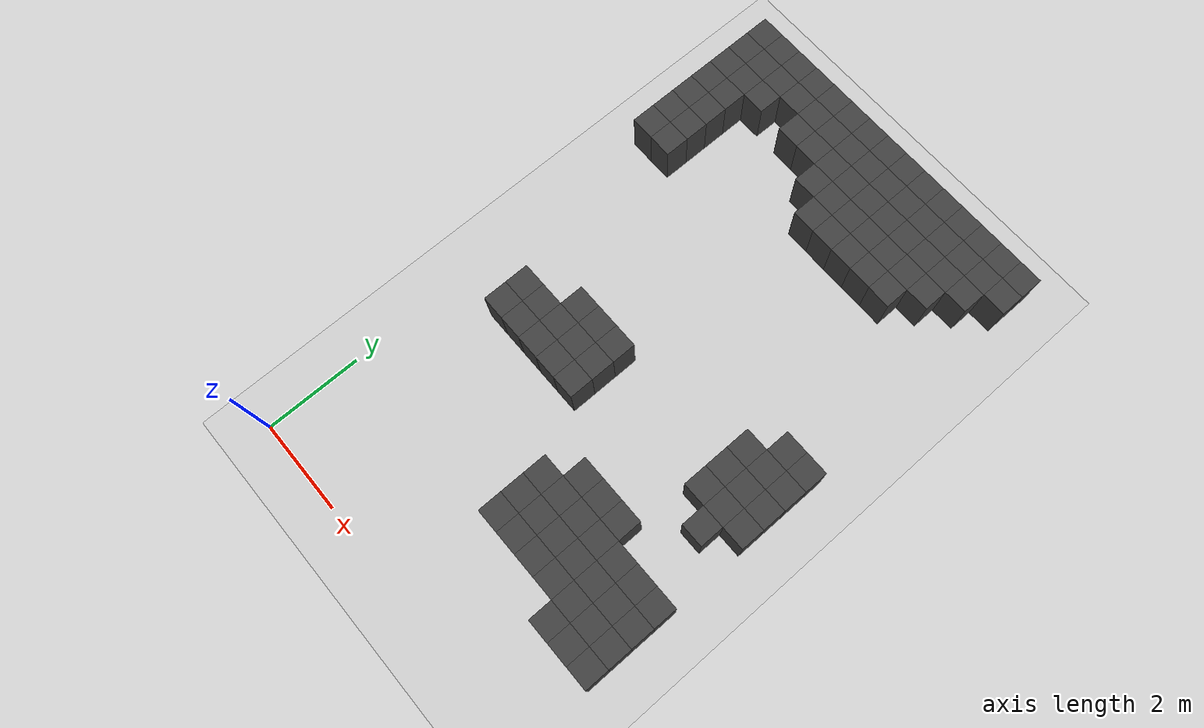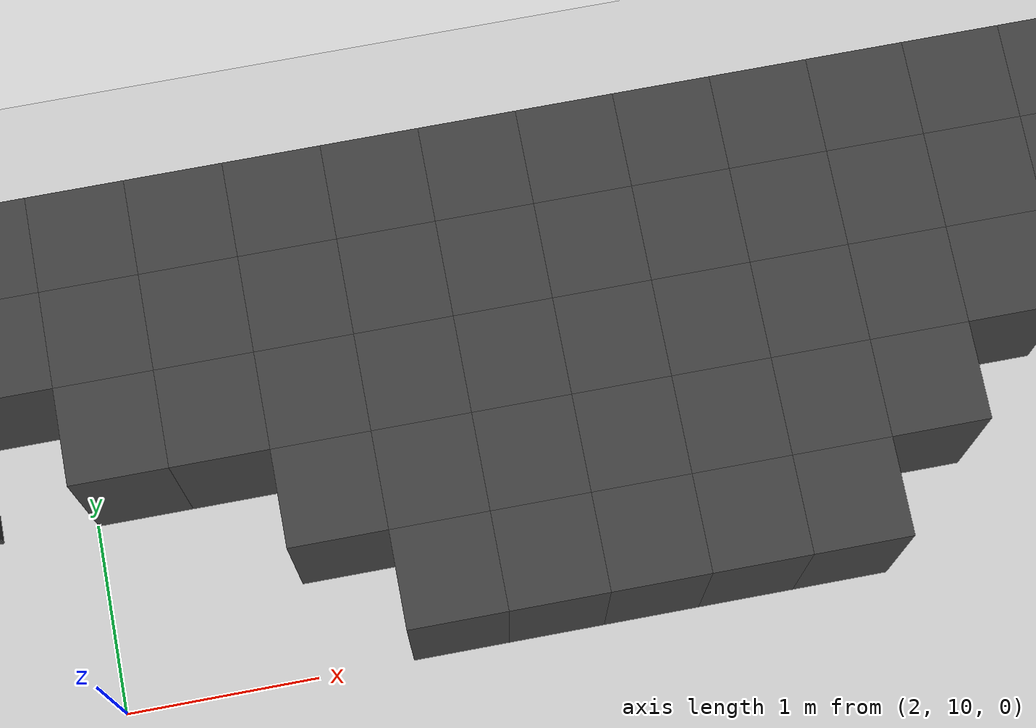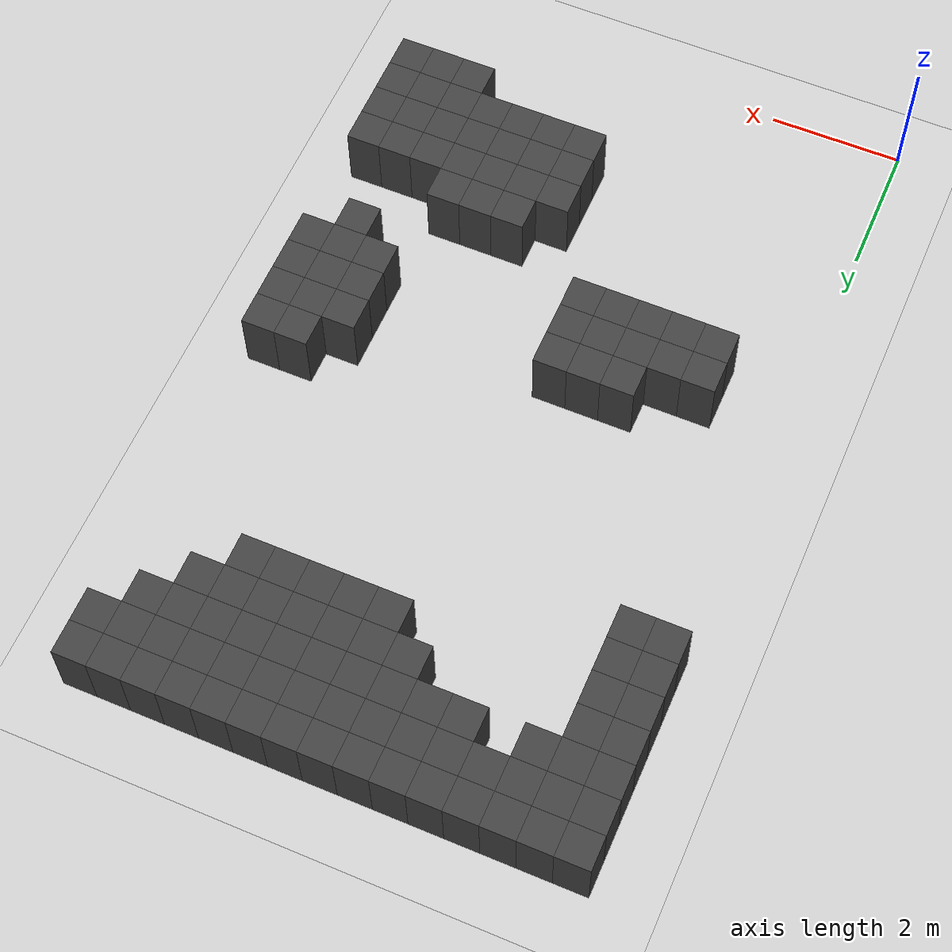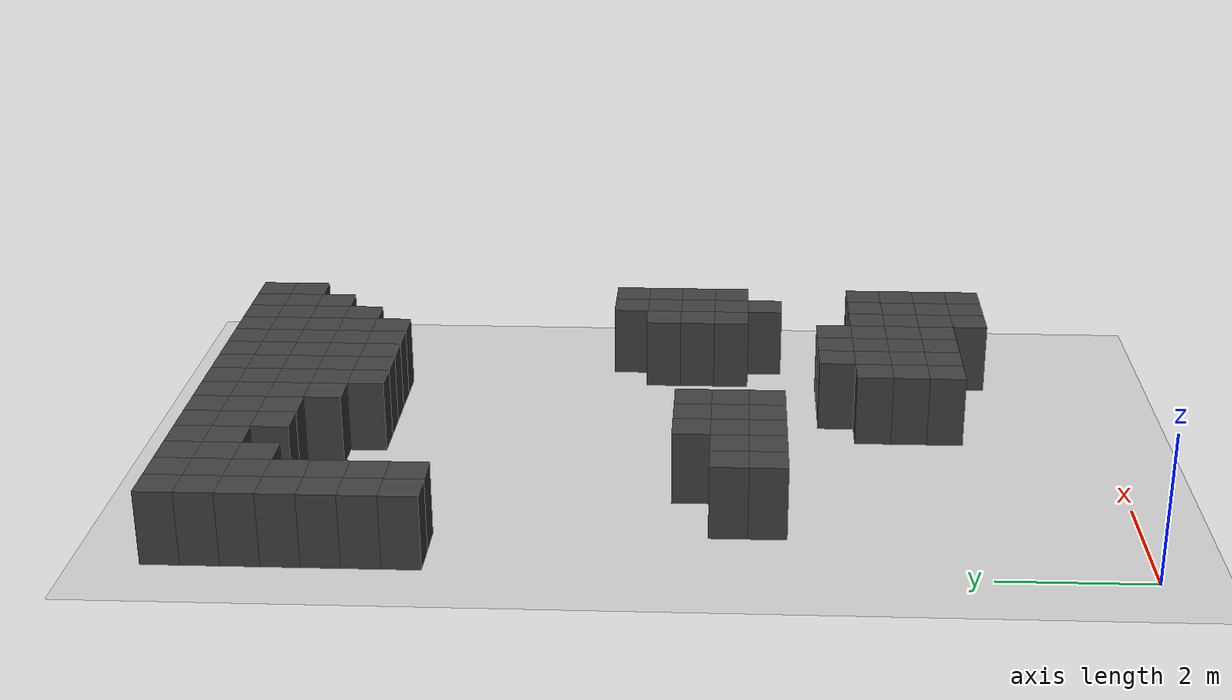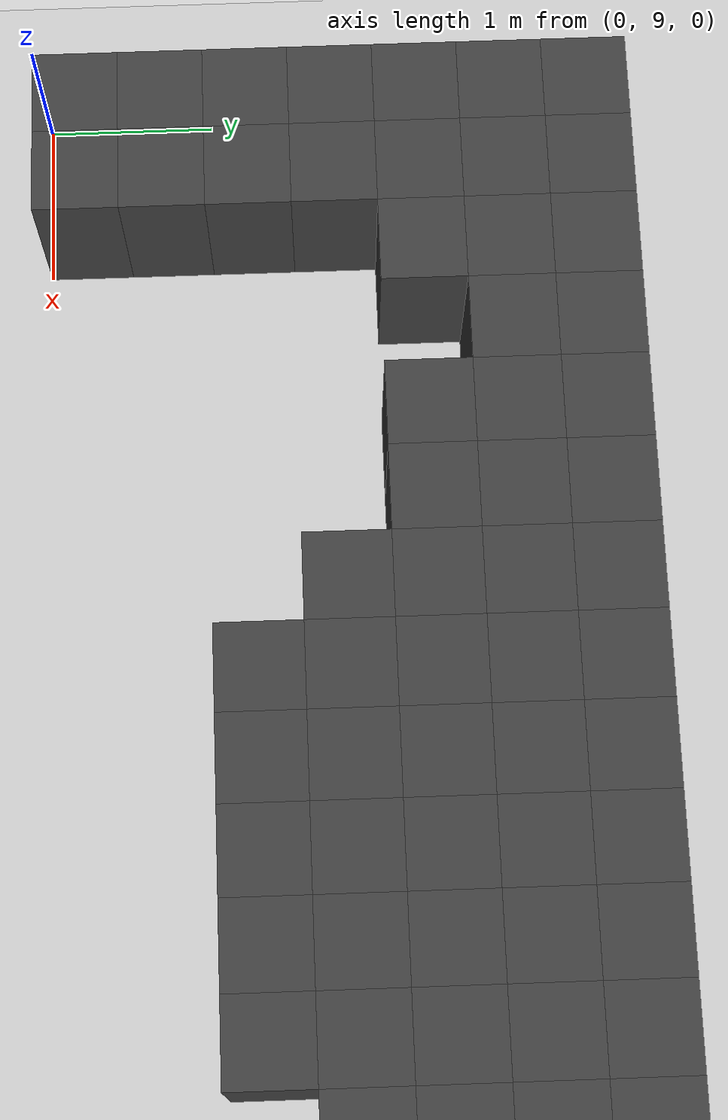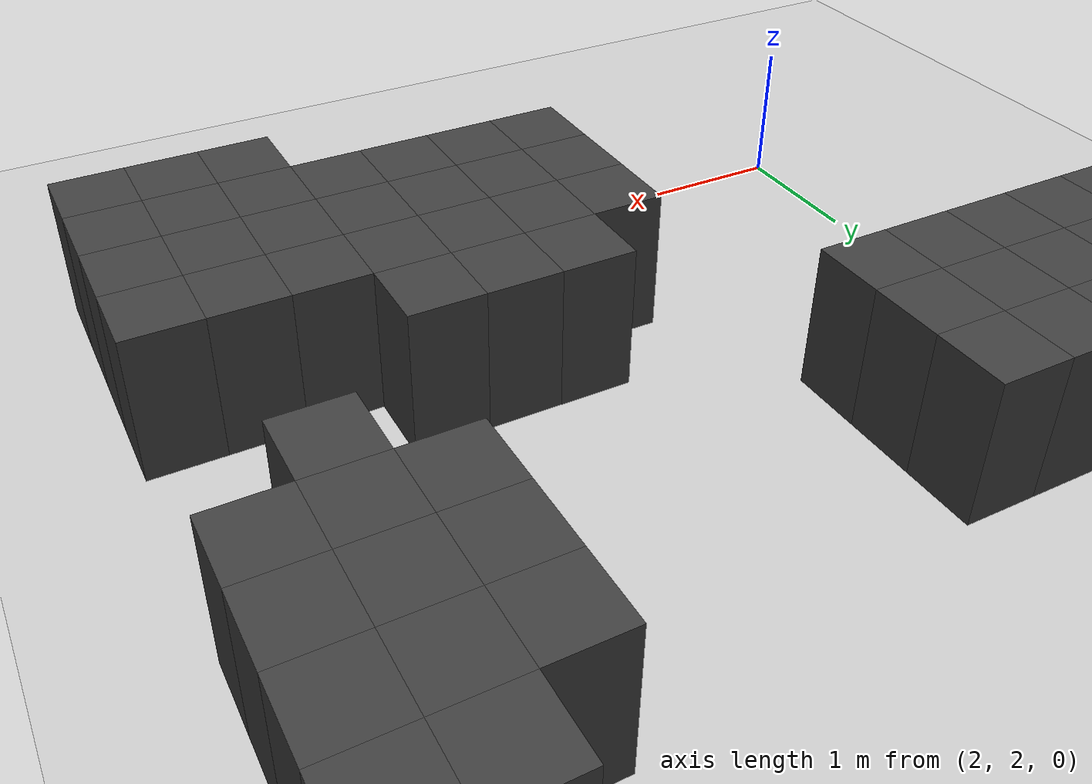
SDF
<sdf version="1.7">
 <world name="map_9152">
  <model name="ground_plane">
   <static>true</static>
   <link name="link">
    <collision name="collision">
     <geometry><plane><normal>0 0 1</normal><size>200 200</size></plane></geometry>
    </collision>
    <visual name="visual">
     <geometry><plane><normal>0 0 1</normal><size>200 200</size></plane></geometry>
     <material><ambient>0.8 0.8 0.8 1</ambient><diffuse>0.8 0.8 0.8 1</diffuse></material>
    </visual>
   </link>
  </model>
  <model name="maze_environment">
   <static>true</static>
   <link name="wall_25">
    <pose>0.250 12.250 0.500 0 0 0</pose>
    <collision name="col"><geometry><box><size>0.5 0.5 1.0</size></box></geometry></collision>
    <visual name="vis">
     <geometry><box><size>0.5 0.5 1.0</size></box></geometry>
     <material><ambient>0.15 0.15 0.15 1</ambient><diffuse>0.25 0.25 0.25 1</diffuse></material>
    </visual>
   </link>
   <link name="wall_26">
    <pose>0.750 12.250 0.500 0 0 0</pose>
    <collision name="col"><geometry><box><size>0.5 0.5 1.0</size></box></geometry></collision>
    <visual name="vis">
     <geometry><box><size>0.5 0.5 1.0</size></box></geometry>
     <material><ambient>0.15 0.15 0.15 1</ambient><diffuse>0.25 0.25 0.25 1</diffuse></material>
    </visual>
   </link>
   <link name="wall_27">
    <pose>1.250 12.250 0.500 0 0 0</pose>
    <collision name="col"><geometry><box><size>0.5 0.5 1.0</size></box></geometry></collision>
    <visual name="vis">
     <geometry><box><size>0.5 0.5 1.0</size></box></geometry>
     <material><ambient>0.15 0.15 0.15 1</ambient><diffuse>0.25 0.25 0.25 1</diffuse></material>
    </visual>
   </link>
   <link name="wall_28">
    <pose>1.750 12.250 0.500 0 0 0</pose>
    <collision name="col"><geometry><box><size>0.5 0.5 1.0</size></box></geometry></collision>
    <visual name="vis">
     <geometry><box><size>0.5 0.5 1.0</size></box></geometry>
     <material><ambient>0.15 0.15 0.15 1</ambient><diffuse>0.25 0.25 0.25 1</diffuse></material>
    </visual>
   </link>
   <link name="wall_29">
    <pose>2.250 12.250 0.500 0 0 0</pose>
    <collision name="col"><geometry><box><size>0.5 0.5 1.0</size></box></geometry></collision>
    <visual name="vis">
     <geometry><box><size>0.5 0.5 1.0</size></box></geometry>
     <material><ambient>0.15 0.15 0.15 1</ambient><diffuse>0.25 0.25 0.25 1</diffuse></material>
    </visual>
   </link>
   <link name="wall_30">
    <pose>2.750 12.250 0.500 0 0 0</pose>
    <collision name="col"><geometry><box><size>0.5 0.5 1.0</size></box></geometry></collision>
    <visual name="vis">
     <geometry><box><size>0.5 0.5 1.0</size></box></geometry>
     <material><ambient>0.15 0.15 0.15 1</ambient><diffuse>0.25 0.25 0.25 1</diffuse></material>
    </visual>
   </link>
   <link name="wall_31">
    <pose>3.250 12.250 0.500 0 0 0</pose>
    <collision name="col"><geometry><box><size>0.5 0.5 1.0</size></box></geometry></collision>
    <visual name="vis">
     <geometry><box><size>0.5 0.5 1.0</size></box></geometry>
     <material><ambient>0.15 0.15 0.15 1</ambient><diffuse>0.25 0.25 0.25 1</diffuse></material>
    </visual>
   </link>
   <link name="wall_32">
    <pose>3.750 12.250 0.500 0 0 0</pose>
    <collision name="col"><geometry><box><size>0.5 0.5 1.0</size></box></geometry></collision>
    <visual name="vis">
     <geometry><box><size>0.5 0.5 1.0</size></box></geometry>
     <material><ambient>0.15 0.15 0.15 1</ambient><diffuse>0.25 0.25 0.25 1</diffuse></material>
    </visual>
   </link>
   <link name="wall_33">
    <pose>4.250 12.250 0.500 0 0 0</pose>
    <collision name="col"><geometry><box><size>0.5 0.5 1.0</size></box></geometry></collision>
    <visual name="vis">
     <geometry><box><size>0.5 0.5 1.0</size></box></geometry>
     <material><ambient>0.15 0.15 0.15 1</ambient><diffuse>0.25 0.25 0.25 1</diffuse></material>
    </visual>
   </link>
   <link name="wall_34">
    <pose>4.750 12.250 0.500 0 0 0</pose>
    <collision name="col"><geometry><box><size>0.5 0.5 1.0</size></box></geometry></collision>
    <visual name="vis">
     <geometry><box><size>0.5 0.5 1.0</size></box></geometry>
     <material><ambient>0.15 0.15 0.15 1</ambient><diffuse>0.25 0.25 0.25 1</diffuse></material>
    </visual>
   </link>
   <link name="wall_35">
    <pose>5.250 12.250 0.500 0 0 0</pose>
    <collision name="col"><geometry><box><size>0.5 0.5 1.0</size></box></geometry></collision>
    <visual name="vis">
     <geometry><box><size>0.5 0.5 1.0</size></box></geometry>
     <material><ambient>0.15 0.15 0.15 1</ambient><diffuse>0.25 0.25 0.25 1</diffuse></material>
    </visual>
   </link>
   <link name="wall_36">
    <pose>5.750 12.250 0.500 0 0 0</pose>
    <collision name="col"><geometry><box><size>0.5 0.5 1.0</size></box></geometry></collision>
    <visual name="vis">
     <geometry><box><size>0.5 0.5 1.0</size></box></geometry>
     <material><ambient>0.15 0.15 0.15 1</ambient><diffuse>0.25 0.25 0.25 1</diffuse></material>
    </visual>
   </link>
   <link name="wall_37">
    <pose>6.250 12.250 0.500 0 0 0</pose>
    <collision name="col"><geometry><box><size>0.5 0.5 1.0</size></box></geometry></collision>
    <visual name="vis">
     <geometry><box><size>0.5 0.5 1.0</size></box></geometry>
     <material><ambient>0.15 0.15 0.15 1</ambient><diffuse>0.25 0.25 0.25 1</diffuse></material>
    </visual>
   </link>
   <link name="wall_38">
    <pose>6.750 12.250 0.500 0 0 0</pose>
    <collision name="col"><geometry><box><size>0.5 0.5 1.0</size></box></geometry></collision>
    <visual name="vis">
     <geometry><box><size>0.5 0.5 1.0</size></box></geometry>
     <material><ambient>0.15 0.15 0.15 1</ambient><diffuse>0.25 0.25 0.25 1</diffuse></material>
    </visual>
   </link>
   <link name="wall_39">
    <pose>7.250 12.250 0.500 0 0 0</pose>
    <collision name="col"><geometry><box><size>0.5 0.5 1.0</size></box></geometry></collision>
    <visual name="vis">
     <geometry><box><size>0.5 0.5 1.0</size></box></geometry>
     <material><ambient>0.15 0.15 0.15 1</ambient><diffuse>0.25 0.25 0.25 1</diffuse></material>
    </visual>
   </link>
   <link name="wall_68">
    <pose>0.250 11.750 0.500 0 0 0</pose>
    <collision name="col"><geometry><box><size>0.5 0.5 1.0</size></box></geometry></collision>
    <visual name="vis">
     <geometry><box><size>0.5 0.5 1.0</size></box></geometry>
     <material><ambient>0.15 0.15 0.15 1</ambient><diffuse>0.25 0.25 0.25 1</diffuse></material>
    </visual>
   </link>
   <link name="wall_69">
    <pose>0.750 11.750 0.500 0 0 0</pose>
    <collision name="col"><geometry><box><size>0.5 0.5 1.0</size></box></geometry></collision>
    <visual name="vis">
     <geometry><box><size>0.5 0.5 1.0</size></box></geometry>
     <material><ambient>0.15 0.15 0.15 1</ambient><diffuse>0.25 0.25 0.25 1</diffuse></material>
    </visual>
   </link>
   <link name="wall_70">
    <pose>1.250 11.750 0.500 0 0 0</pose>
    <collision name="col"><geometry><box><size>0.5 0.5 1.0</size></box></geometry></collision>
    <visual name="vis">
     <geometry><box><size>0.5 0.5 1.0</size></box></geometry>
     <material><ambient>0.15 0.15 0.15 1</ambient><diffuse>0.25 0.25 0.25 1</diffuse></material>
    </visual>
   </link>
   <link name="wall_71">
    <pose>1.750 11.750 0.500 0 0 0</pose>
    <collision name="col"><geometry><box><size>0.5 0.5 1.0</size></box></geometry></collision>
    <visual name="vis">
     <geometry><box><size>0.5 0.5 1.0</size></box></geometry>
     <material><ambient>0.15 0.15 0.15 1</ambient><diffuse>0.25 0.25 0.25 1</diffuse></material>
    </visual>
   </link>
   <link name="wall_72">
    <pose>2.250 11.750 0.500 0 0 0</pose>
    <collision name="col"><geometry><box><size>0.5 0.5 1.0</size></box></geometry></collision>
    <visual name="vis">
     <geometry><box><size>0.5 0.5 1.0</size></box></geometry>
     <material><ambient>0.15 0.15 0.15 1</ambient><diffuse>0.25 0.25 0.25 1</diffuse></material>
    </visual>
   </link>
   <link name="wall_73">
    <pose>2.750 11.750 0.500 0 0 0</pose>
    <collision name="col"><geometry><box><size>0.5 0.5 1.0</size></box></geometry></collision>
    <visual name="vis">
     <geometry><box><size>0.5 0.5 1.0</size></box></geometry>
     <material><ambient>0.15 0.15 0.15 1</ambient><diffuse>0.25 0.25 0.25 1</diffuse></material>
    </visual>
   </link>
   <link name="wall_74">
    <pose>3.250 11.750 0.500 0 0 0</pose>
    <collision name="col"><geometry><box><size>0.5 0.5 1.0</size></box></geometry></collision>
    <visual name="vis">
     <geometry><box><size>0.5 0.5 1.0</size></box></geometry>
     <material><ambient>0.15 0.15 0.15 1</ambient><diffuse>0.25 0.25 0.25 1</diffuse></material>
    </visual>
   </link>
   <link name="wall_75">
    <pose>3.750 11.750 0.500 0 0 0</pose>
    <collision name="col"><geometry><box><size>0.5 0.5 1.0</size></box></geometry></collision>
    <visual name="vis">
     <geometry><box><size>0.5 0.5 1.0</size></box></geometry>
     <material><ambient>0.15 0.15 0.15 1</ambient><diffuse>0.25 0.25 0.25 1</diffuse></material>
    </visual>
   </link>
   <link name="wall_76">
    <pose>4.250 11.750 0.500 0 0 0</pose>
    <collision name="col"><geometry><box><size>0.5 0.5 1.0</size></box></geometry></collision>
    <visual name="vis">
     <geometry><box><size>0.5 0.5 1.0</size></box></geometry>
     <material><ambient>0.15 0.15 0.15 1</ambient><diffuse>0.25 0.25 0.25 1</diffuse></material>
    </visual>
   </link>
   <link name="wall_77">
    <pose>4.750 11.750 0.500 0 0 0</pose>
    <collision name="col"><geometry><box><size>0.5 0.5 1.0</size></box></geometry></collision>
    <visual name="vis">
     <geometry><box><size>0.5 0.5 1.0</size></box></geometry>
     <material><ambient>0.15 0.15 0.15 1</ambient><diffuse>0.25 0.25 0.25 1</diffuse></material>
    </visual>
   </link>
   <link name="wall_78">
    <pose>5.250 11.750 0.500 0 0 0</pose>
    <collision name="col"><geometry><box><size>0.5 0.5 1.0</size></box></geometry></collision>
    <visual name="vis">
     <geometry><box><size>0.5 0.5 1.0</size></box></geometry>
     <material><ambient>0.15 0.15 0.15 1</ambient><diffuse>0.25 0.25 0.25 1</diffuse></material>
    </visual>
   </link>
   <link name="wall_79">
    <pose>5.750 11.750 0.500 0 0 0</pose>
    <collision name="col"><geometry><box><size>0.5 0.5 1.0</size></box></geometry></collision>
    <visual name="vis">
     <geometry><box><size>0.5 0.5 1.0</size></box></geometry>
     <material><ambient>0.15 0.15 0.15 1</ambient><diffuse>0.25 0.25 0.25 1</diffuse></material>
    </visual>
   </link>
   <link name="wall_80">
    <pose>6.250 11.750 0.500 0 0 0</pose>
    <collision name="col"><geometry><box><size>0.5 0.5 1.0</size></box></geometry></collision>
    <visual name="vis">
     <geometry><box><size>0.5 0.5 1.0</size></box></geometry>
     <material><ambient>0.15 0.15 0.15 1</ambient><diffuse>0.25 0.25 0.25 1</diffuse></material>
    </visual>
   </link>
   <link name="wall_81">
    <pose>6.750 11.750 0.500 0 0 0</pose>
    <collision name="col"><geometry><box><size>0.5 0.5 1.0</size></box></geometry></collision>
    <visual name="vis">
     <geometry><box><size>0.5 0.5 1.0</size></box></geometry>
     <material><ambient>0.15 0.15 0.15 1</ambient><diffuse>0.25 0.25 0.25 1</diffuse></material>
    </visual>
   </link>
   <link name="wall_82">
    <pose>7.250 11.750 0.500 0 0 0</pose>
    <collision name="col"><geometry><box><size>0.5 0.5 1.0</size></box></geometry></collision>
    <visual name="vis">
     <geometry><box><size>0.5 0.5 1.0</size></box></geometry>
     <material><ambient>0.15 0.15 0.15 1</ambient><diffuse>0.25 0.25 0.25 1</diffuse></material>
    </visual>
   </link>
   <link name="wall_100">
    <pose>0.250 11.250 0.500 0 0 0</pose>
    <collision name="col"><geometry><box><size>0.5 0.5 1.0</size></box></geometry></collision>
    <visual name="vis">
     <geometry><box><size>0.5 0.5 1.0</size></box></geometry>
     <material><ambient>0.15 0.15 0.15 1</ambient><diffuse>0.25 0.25 0.25 1</diffuse></material>
    </visual>
   </link>
   <link name="wall_101">
    <pose>0.750 11.250 0.500 0 0 0</pose>
    <collision name="col"><geometry><box><size>0.5 0.5 1.0</size></box></geometry></collision>
    <visual name="vis">
     <geometry><box><size>0.5 0.5 1.0</size></box></geometry>
     <material><ambient>0.15 0.15 0.15 1</ambient><diffuse>0.25 0.25 0.25 1</diffuse></material>
    </visual>
   </link>
   <link name="wall_102">
    <pose>1.250 11.250 0.500 0 0 0</pose>
    <collision name="col"><geometry><box><size>0.5 0.5 1.0</size></box></geometry></collision>
    <visual name="vis">
     <geometry><box><size>0.5 0.5 1.0</size></box></geometry>
     <material><ambient>0.15 0.15 0.15 1</ambient><diffuse>0.25 0.25 0.25 1</diffuse></material>
    </visual>
   </link>
   <link name="wall_103">
    <pose>2.250 11.250 0.500 0 0 0</pose>
    <collision name="col"><geometry><box><size>0.5 0.5 1.0</size></box></geometry></collision>
    <visual name="vis">
     <geometry><box><size>0.5 0.5 1.0</size></box></geometry>
     <material><ambient>0.15 0.15 0.15 1</ambient><diffuse>0.25 0.25 0.25 1</diffuse></material>
    </visual>
   </link>
   <link name="wall_104">
    <pose>2.750 11.250 0.500 0 0 0</pose>
    <collision name="col"><geometry><box><size>0.5 0.5 1.0</size></box></geometry></collision>
    <visual name="vis">
     <geometry><box><size>0.5 0.5 1.0</size></box></geometry>
     <material><ambient>0.15 0.15 0.15 1</ambient><diffuse>0.25 0.25 0.25 1</diffuse></material>
    </visual>
   </link>
   <link name="wall_105">
    <pose>3.250 11.250 0.500 0 0 0</pose>
    <collision name="col"><geometry><box><size>0.5 0.5 1.0</size></box></geometry></collision>
    <visual name="vis">
     <geometry><box><size>0.5 0.5 1.0</size></box></geometry>
     <material><ambient>0.15 0.15 0.15 1</ambient><diffuse>0.25 0.25 0.25 1</diffuse></material>
    </visual>
   </link>
   <link name="wall_106">
    <pose>3.750 11.250 0.500 0 0 0</pose>
    <collision name="col"><geometry><box><size>0.5 0.5 1.0</size></box></geometry></collision>
    <visual name="vis">
     <geometry><box><size>0.5 0.5 1.0</size></box></geometry>
     <material><ambient>0.15 0.15 0.15 1</ambient><diffuse>0.25 0.25 0.25 1</diffuse></material>
    </visual>
   </link>
   <link name="wall_107">
    <pose>4.250 11.250 0.500 0 0 0</pose>
    <collision name="col"><geometry><box><size>0.5 0.5 1.0</size></box></geometry></collision>
    <visual name="vis">
     <geometry><box><size>0.5 0.5 1.0</size></box></geometry>
     <material><ambient>0.15 0.15 0.15 1</ambient><diffuse>0.25 0.25 0.25 1</diffuse></material>
    </visual>
   </link>
   <link name="wall_108">
    <pose>4.750 11.250 0.500 0 0 0</pose>
    <collision name="col"><geometry><box><size>0.5 0.5 1.0</size></box></geometry></collision>
    <visual name="vis">
     <geometry><box><size>0.5 0.5 1.0</size></box></geometry>
     <material><ambient>0.15 0.15 0.15 1</ambient><diffuse>0.25 0.25 0.25 1</diffuse></material>
    </visual>
   </link>
   <link name="wall_109">
    <pose>5.250 11.250 0.500 0 0 0</pose>
    <collision name="col"><geometry><box><size>0.5 0.5 1.0</size></box></geometry></collision>
    <visual name="vis">
     <geometry><box><size>0.5 0.5 1.0</size></box></geometry>
     <material><ambient>0.15 0.15 0.15 1</ambient><diffuse>0.25 0.25 0.25 1</diffuse></material>
    </visual>
   </link>
   <link name="wall_110">
    <pose>5.750 11.250 0.500 0 0 0</pose>
    <collision name="col"><geometry><box><size>0.5 0.5 1.0</size></box></geometry></collision>
    <visual name="vis">
     <geometry><box><size>0.5 0.5 1.0</size></box></geometry>
     <material><ambient>0.15 0.15 0.15 1</ambient><diffuse>0.25 0.25 0.25 1</diffuse></material>
    </visual>
   </link>
   <link name="wall_111">
    <pose>6.250 11.250 0.500 0 0 0</pose>
    <collision name="col"><geometry><box><size>0.5 0.5 1.0</size></box></geometry></collision>
    <visual name="vis">
     <geometry><box><size>0.5 0.5 1.0</size></box></geometry>
     <material><ambient>0.15 0.15 0.15 1</ambient><diffuse>0.25 0.25 0.25 1</diffuse></material>
    </visual>
   </link>
   <link name="wall_112">
    <pose>6.750 11.250 0.500 0 0 0</pose>
    <collision name="col"><geometry><box><size>0.5 0.5 1.0</size></box></geometry></collision>
    <visual name="vis">
     <geometry><box><size>0.5 0.5 1.0</size></box></geometry>
     <material><ambient>0.15 0.15 0.15 1</ambient><diffuse>0.25 0.25 0.25 1</diffuse></material>
    </visual>
   </link>
   <link name="wall_118">
    <pose>0.250 10.750 0.500 0 0 0</pose>
    <collision name="col"><geometry><box><size>0.5 0.5 1.0</size></box></geometry></collision>
    <visual name="vis">
     <geometry><box><size>0.5 0.5 1.0</size></box></geometry>
     <material><ambient>0.15 0.15 0.15 1</ambient><diffuse>0.25 0.25 0.25 1</diffuse></material>
    </visual>
   </link>
   <link name="wall_119">
    <pose>0.750 10.750 0.500 0 0 0</pose>
    <collision name="col"><geometry><box><size>0.5 0.5 1.0</size></box></geometry></collision>
    <visual name="vis">
     <geometry><box><size>0.5 0.5 1.0</size></box></geometry>
     <material><ambient>0.15 0.15 0.15 1</ambient><diffuse>0.25 0.25 0.25 1</diffuse></material>
    </visual>
   </link>
   <link name="wall_120">
    <pose>3.250 10.750 0.500 0 0 0</pose>
    <collision name="col"><geometry><box><size>0.5 0.5 1.0</size></box></geometry></collision>
    <visual name="vis">
     <geometry><box><size>0.5 0.5 1.0</size></box></geometry>
     <material><ambient>0.15 0.15 0.15 1</ambient><diffuse>0.25 0.25 0.25 1</diffuse></material>
    </visual>
   </link>
   <link name="wall_121">
    <pose>3.750 10.750 0.500 0 0 0</pose>
    <collision name="col"><geometry><box><size>0.5 0.5 1.0</size></box></geometry></collision>
    <visual name="vis">
     <geometry><box><size>0.5 0.5 1.0</size></box></geometry>
     <material><ambient>0.15 0.15 0.15 1</ambient><diffuse>0.25 0.25 0.25 1</diffuse></material>
    </visual>
   </link>
   <link name="wall_122">
    <pose>4.250 10.750 0.500 0 0 0</pose>
    <collision name="col"><geometry><box><size>0.5 0.5 1.0</size></box></geometry></collision>
    <visual name="vis">
     <geometry><box><size>0.5 0.5 1.0</size></box></geometry>
     <material><ambient>0.15 0.15 0.15 1</ambient><diffuse>0.25 0.25 0.25 1</diffuse></material>
    </visual>
   </link>
   <link name="wall_123">
    <pose>4.750 10.750 0.500 0 0 0</pose>
    <collision name="col"><geometry><box><size>0.5 0.5 1.0</size></box></geometry></collision>
    <visual name="vis">
     <geometry><box><size>0.5 0.5 1.0</size></box></geometry>
     <material><ambient>0.15 0.15 0.15 1</ambient><diffuse>0.25 0.25 0.25 1</diffuse></material>
    </visual>
   </link>
   <link name="wall_124">
    <pose>5.250 10.750 0.500 0 0 0</pose>
    <collision name="col"><geometry><box><size>0.5 0.5 1.0</size></box></geometry></collision>
    <visual name="vis">
     <geometry><box><size>0.5 0.5 1.0</size></box></geometry>
     <material><ambient>0.15 0.15 0.15 1</ambient><diffuse>0.25 0.25 0.25 1</diffuse></material>
    </visual>
   </link>
   <link name="wall_125">
    <pose>5.750 10.750 0.500 0 0 0</pose>
    <collision name="col"><geometry><box><size>0.5 0.5 1.0</size></box></geometry></collision>
    <visual name="vis">
     <geometry><box><size>0.5 0.5 1.0</size></box></geometry>
     <material><ambient>0.15 0.15 0.15 1</ambient><diffuse>0.25 0.25 0.25 1</diffuse></material>
    </visual>
   </link>
   <link name="wall_126">
    <pose>6.250 10.750 0.500 0 0 0</pose>
    <collision name="col"><geometry><box><size>0.5 0.5 1.0</size></box></geometry></collision>
    <visual name="vis">
     <geometry><box><size>0.5 0.5 1.0</size></box></geometry>
     <material><ambient>0.15 0.15 0.15 1</ambient><diffuse>0.25 0.25 0.25 1</diffuse></material>
    </visual>
   </link>
   <link name="wall_131">
    <pose>0.250 10.250 0.500 0 0 0</pose>
    <collision name="col"><geometry><box><size>0.5 0.5 1.0</size></box></geometry></collision>
    <visual name="vis">
     <geometry><box><size>0.5 0.5 1.0</size></box></geometry>
     <material><ambient>0.15 0.15 0.15 1</ambient><diffuse>0.25 0.25 0.25 1</diffuse></material>
    </visual>
   </link>
   <link name="wall_132">
    <pose>0.750 10.250 0.500 0 0 0</pose>
    <collision name="col"><geometry><box><size>0.5 0.5 1.0</size></box></geometry></collision>
    <visual name="vis">
     <geometry><box><size>0.5 0.5 1.0</size></box></geometry>
     <material><ambient>0.15 0.15 0.15 1</ambient><diffuse>0.25 0.25 0.25 1</diffuse></material>
    </visual>
   </link>
   <link name="wall_133">
    <pose>3.750 10.250 0.500 0 0 0</pose>
    <collision name="col"><geometry><box><size>0.5 0.5 1.0</size></box></geometry></collision>
    <visual name="vis">
     <geometry><box><size>0.5 0.5 1.0</size></box></geometry>
     <material><ambient>0.15 0.15 0.15 1</ambient><diffuse>0.25 0.25 0.25 1</diffuse></material>
    </visual>
   </link>
   <link name="wall_134">
    <pose>4.250 10.250 0.500 0 0 0</pose>
    <collision name="col"><geometry><box><size>0.5 0.5 1.0</size></box></geometry></collision>
    <visual name="vis">
     <geometry><box><size>0.5 0.5 1.0</size></box></geometry>
     <material><ambient>0.15 0.15 0.15 1</ambient><diffuse>0.25 0.25 0.25 1</diffuse></material>
    </visual>
   </link>
   <link name="wall_135">
    <pose>4.750 10.250 0.500 0 0 0</pose>
    <collision name="col"><geometry><box><size>0.5 0.5 1.0</size></box></geometry></collision>
    <visual name="vis">
     <geometry><box><size>0.5 0.5 1.0</size></box></geometry>
     <material><ambient>0.15 0.15 0.15 1</ambient><diffuse>0.25 0.25 0.25 1</diffuse></material>
    </visual>
   </link>
   <link name="wall_136">
    <pose>5.250 10.250 0.500 0 0 0</pose>
    <collision name="col"><geometry><box><size>0.5 0.5 1.0</size></box></geometry></collision>
    <visual name="vis">
     <geometry><box><size>0.5 0.5 1.0</size></box></geometry>
     <material><ambient>0.15 0.15 0.15 1</ambient><diffuse>0.25 0.25 0.25 1</diffuse></material>
    </visual>
   </link>
   <link name="wall_137">
    <pose>5.750 10.250 0.500 0 0 0</pose>
    <collision name="col"><geometry><box><size>0.5 0.5 1.0</size></box></geometry></collision>
    <visual name="vis">
     <geometry><box><size>0.5 0.5 1.0</size></box></geometry>
     <material><ambient>0.15 0.15 0.15 1</ambient><diffuse>0.25 0.25 0.25 1</diffuse></material>
    </visual>
   </link>
   <link name="wall_142">
    <pose>0.250 9.750 0.500 0 0 0</pose>
    <collision name="col"><geometry><box><size>0.5 0.5 1.0</size></box></geometry></collision>
    <visual name="vis">
     <geometry><box><size>0.5 0.5 1.0</size></box></geometry>
     <material><ambient>0.15 0.15 0.15 1</ambient><diffuse>0.25 0.25 0.25 1</diffuse></material>
    </visual>
   </link>
   <link name="wall_143">
    <pose>0.750 9.750 0.500 0 0 0</pose>
    <collision name="col"><geometry><box><size>0.5 0.5 1.0</size></box></geometry></collision>
    <visual name="vis">
     <geometry><box><size>0.5 0.5 1.0</size></box></geometry>
     <material><ambient>0.15 0.15 0.15 1</ambient><diffuse>0.25 0.25 0.25 1</diffuse></material>
    </visual>
   </link>
   <link name="wall_147">
    <pose>0.250 9.250 0.500 0 0 0</pose>
    <collision name="col"><geometry><box><size>0.5 0.5 1.0</size></box></geometry></collision>
    <visual name="vis">
     <geometry><box><size>0.5 0.5 1.0</size></box></geometry>
     <material><ambient>0.15 0.15 0.15 1</ambient><diffuse>0.25 0.25 0.25 1</diffuse></material>
    </visual>
   </link>
   <link name="wall_148">
    <pose>0.750 9.250 0.500 0 0 0</pose>
    <collision name="col"><geometry><box><size>0.5 0.5 1.0</size></box></geometry></collision>
    <visual name="vis">
     <geometry><box><size>0.5 0.5 1.0</size></box></geometry>
     <material><ambient>0.15 0.15 0.15 1</ambient><diffuse>0.25 0.25 0.25 1</diffuse></material>
    </visual>
   </link>
   <link name="wall_196">
    <pose>6.750 6.750 0.500 0 0 0</pose>
    <collision name="col"><geometry><box><size>0.5 0.5 1.0</size></box></geometry></collision>
    <visual name="vis">
     <geometry><box><size>0.5 0.5 1.0</size></box></geometry>
     <material><ambient>0.15 0.15 0.15 1</ambient><diffuse>0.25 0.25 0.25 1</diffuse></material>
    </visual>
   </link>
   <link name="wall_197">
    <pose>7.250 6.750 0.500 0 0 0</pose>
    <collision name="col"><geometry><box><size>0.5 0.5 1.0</size></box></geometry></collision>
    <visual name="vis">
     <geometry><box><size>0.5 0.5 1.0</size></box></geometry>
     <material><ambient>0.15 0.15 0.15 1</ambient><diffuse>0.25 0.25 0.25 1</diffuse></material>
    </visual>
   </link>
   <link name="wall_218">
    <pose>6.250 6.250 0.500 0 0 0</pose>
    <collision name="col"><geometry><box><size>0.5 0.5 1.0</size></box></geometry></collision>
    <visual name="vis">
     <geometry><box><size>0.5 0.5 1.0</size></box></geometry>
     <material><ambient>0.15 0.15 0.15 1</ambient><diffuse>0.25 0.25 0.25 1</diffuse></material>
    </visual>
   </link>
   <link name="wall_219">
    <pose>6.750 6.250 0.500 0 0 0</pose>
    <collision name="col"><geometry><box><size>0.5 0.5 1.0</size></box></geometry></collision>
    <visual name="vis">
     <geometry><box><size>0.5 0.5 1.0</size></box></geometry>
     <material><ambient>0.15 0.15 0.15 1</ambient><diffuse>0.25 0.25 0.25 1</diffuse></material>
    </visual>
   </link>
   <link name="wall_220">
    <pose>7.250 6.250 0.500 0 0 0</pose>
    <collision name="col"><geometry><box><size>0.5 0.5 1.0</size></box></geometry></collision>
    <visual name="vis">
     <geometry><box><size>0.5 0.5 1.0</size></box></geometry>
     <material><ambient>0.15 0.15 0.15 1</ambient><diffuse>0.25 0.25 0.25 1</diffuse></material>
    </visual>
   </link>
   <link name="wall_240">
    <pose>2.250 5.750 0.500 0 0 0</pose>
    <collision name="col"><geometry><box><size>0.5 0.5 1.0</size></box></geometry></collision>
    <visual name="vis">
     <geometry><box><size>0.5 0.5 1.0</size></box></geometry>
     <material><ambient>0.15 0.15 0.15 1</ambient><diffuse>0.25 0.25 0.25 1</diffuse></material>
    </visual>
   </link>
   <link name="wall_241">
    <pose>2.750 5.750 0.500 0 0 0</pose>
    <collision name="col"><geometry><box><size>0.5 0.5 1.0</size></box></geometry></collision>
    <visual name="vis">
     <geometry><box><size>0.5 0.5 1.0</size></box></geometry>
     <material><ambient>0.15 0.15 0.15 1</ambient><diffuse>0.25 0.25 0.25 1</diffuse></material>
    </visual>
   </link>
   <link name="wall_242">
    <pose>3.250 5.750 0.500 0 0 0</pose>
    <collision name="col"><geometry><box><size>0.5 0.5 1.0</size></box></geometry></collision>
    <visual name="vis">
     <geometry><box><size>0.5 0.5 1.0</size></box></geometry>
     <material><ambient>0.15 0.15 0.15 1</ambient><diffuse>0.25 0.25 0.25 1</diffuse></material>
    </visual>
   </link>
   <link name="wall_243">
    <pose>6.250 5.750 0.500 0 0 0</pose>
    <collision name="col"><geometry><box><size>0.5 0.5 1.0</size></box></geometry></collision>
    <visual name="vis">
     <geometry><box><size>0.5 0.5 1.0</size></box></geometry>
     <material><ambient>0.15 0.15 0.15 1</ambient><diffuse>0.25 0.25 0.25 1</diffuse></material>
    </visual>
   </link>
   <link name="wall_244">
    <pose>6.750 5.750 0.500 0 0 0</pose>
    <collision name="col"><geometry><box><size>0.5 0.5 1.0</size></box></geometry></collision>
    <visual name="vis">
     <geometry><box><size>0.5 0.5 1.0</size></box></geometry>
     <material><ambient>0.15 0.15 0.15 1</ambient><diffuse>0.25 0.25 0.25 1</diffuse></material>
    </visual>
   </link>
   <link name="wall_245">
    <pose>7.250 5.750 0.500 0 0 0</pose>
    <collision name="col"><geometry><box><size>0.5 0.5 1.0</size></box></geometry></collision>
    <visual name="vis">
     <geometry><box><size>0.5 0.5 1.0</size></box></geometry>
     <material><ambient>0.15 0.15 0.15 1</ambient><diffuse>0.25 0.25 0.25 1</diffuse></material>
    </visual>
   </link>
   <link name="wall_264">
    <pose>1.250 5.250 0.500 0 0 0</pose>
    <collision name="col"><geometry><box><size>0.5 0.5 1.0</size></box></geometry></collision>
    <visual name="vis">
     <geometry><box><size>0.5 0.5 1.0</size></box></geometry>
     <material><ambient>0.15 0.15 0.15 1</ambient><diffuse>0.25 0.25 0.25 1</diffuse></material>
    </visual>
   </link>
   <link name="wall_265">
    <pose>1.750 5.250 0.500 0 0 0</pose>
    <collision name="col"><geometry><box><size>0.5 0.5 1.0</size></box></geometry></collision>
    <visual name="vis">
     <geometry><box><size>0.5 0.5 1.0</size></box></geometry>
     <material><ambient>0.15 0.15 0.15 1</ambient><diffuse>0.25 0.25 0.25 1</diffuse></material>
    </visual>
   </link>
   <link name="wall_266">
    <pose>2.250 5.250 0.500 0 0 0</pose>
    <collision name="col"><geometry><box><size>0.5 0.5 1.0</size></box></geometry></collision>
    <visual name="vis">
     <geometry><box><size>0.5 0.5 1.0</size></box></geometry>
     <material><ambient>0.15 0.15 0.15 1</ambient><diffuse>0.25 0.25 0.25 1</diffuse></material>
    </visual>
   </link>
   <link name="wall_267">
    <pose>2.750 5.250 0.500 0 0 0</pose>
    <collision name="col"><geometry><box><size>0.5 0.5 1.0</size></box></geometry></collision>
    <visual name="vis">
     <geometry><box><size>0.5 0.5 1.0</size></box></geometry>
     <material><ambient>0.15 0.15 0.15 1</ambient><diffuse>0.25 0.25 0.25 1</diffuse></material>
    </visual>
   </link>
   <link name="wall_268">
    <pose>3.250 5.250 0.500 0 0 0</pose>
    <collision name="col"><geometry><box><size>0.5 0.5 1.0</size></box></geometry></collision>
    <visual name="vis">
     <geometry><box><size>0.5 0.5 1.0</size></box></geometry>
     <material><ambient>0.15 0.15 0.15 1</ambient><diffuse>0.25 0.25 0.25 1</diffuse></material>
    </visual>
   </link>
   <link name="wall_269">
    <pose>6.250 5.250 0.500 0 0 0</pose>
    <collision name="col"><geometry><box><size>0.5 0.5 1.0</size></box></geometry></collision>
    <visual name="vis">
     <geometry><box><size>0.5 0.5 1.0</size></box></geometry>
     <material><ambient>0.15 0.15 0.15 1</ambient><diffuse>0.25 0.25 0.25 1</diffuse></material>
    </visual>
   </link>
   <link name="wall_270">
    <pose>6.750 5.250 0.500 0 0 0</pose>
    <collision name="col"><geometry><box><size>0.5 0.5 1.0</size></box></geometry></collision>
    <visual name="vis">
     <geometry><box><size>0.5 0.5 1.0</size></box></geometry>
     <material><ambient>0.15 0.15 0.15 1</ambient><diffuse>0.25 0.25 0.25 1</diffuse></material>
    </visual>
   </link>
   <link name="wall_271">
    <pose>7.250 5.250 0.500 0 0 0</pose>
    <collision name="col"><geometry><box><size>0.5 0.5 1.0</size></box></geometry></collision>
    <visual name="vis">
     <geometry><box><size>0.5 0.5 1.0</size></box></geometry>
     <material><ambient>0.15 0.15 0.15 1</ambient><diffuse>0.25 0.25 0.25 1</diffuse></material>
    </visual>
   </link>
   <link name="wall_289">
    <pose>1.250 4.750 0.500 0 0 0</pose>
    <collision name="col"><geometry><box><size>0.5 0.5 1.0</size></box></geometry></collision>
    <visual name="vis">
     <geometry><box><size>0.5 0.5 1.0</size></box></geometry>
     <material><ambient>0.15 0.15 0.15 1</ambient><diffuse>0.25 0.25 0.25 1</diffuse></material>
    </visual>
   </link>
   <link name="wall_290">
    <pose>1.750 4.750 0.500 0 0 0</pose>
    <collision name="col"><geometry><box><size>0.5 0.5 1.0</size></box></geometry></collision>
    <visual name="vis">
     <geometry><box><size>0.5 0.5 1.0</size></box></geometry>
     <material><ambient>0.15 0.15 0.15 1</ambient><diffuse>0.25 0.25 0.25 1</diffuse></material>
    </visual>
   </link>
   <link name="wall_291">
    <pose>2.250 4.750 0.500 0 0 0</pose>
    <collision name="col"><geometry><box><size>0.5 0.5 1.0</size></box></geometry></collision>
    <visual name="vis">
     <geometry><box><size>0.5 0.5 1.0</size></box></geometry>
     <material><ambient>0.15 0.15 0.15 1</ambient><diffuse>0.25 0.25 0.25 1</diffuse></material>
    </visual>
   </link>
   <link name="wall_292">
    <pose>2.750 4.750 0.500 0 0 0</pose>
    <collision name="col"><geometry><box><size>0.5 0.5 1.0</size></box></geometry></collision>
    <visual name="vis">
     <geometry><box><size>0.5 0.5 1.0</size></box></geometry>
     <material><ambient>0.15 0.15 0.15 1</ambient><diffuse>0.25 0.25 0.25 1</diffuse></material>
    </visual>
   </link>
   <link name="wall_293">
    <pose>3.250 4.750 0.500 0 0 0</pose>
    <collision name="col"><geometry><box><size>0.5 0.5 1.0</size></box></geometry></collision>
    <visual name="vis">
     <geometry><box><size>0.5 0.5 1.0</size></box></geometry>
     <material><ambient>0.15 0.15 0.15 1</ambient><diffuse>0.25 0.25 0.25 1</diffuse></material>
    </visual>
   </link>
   <link name="wall_294">
    <pose>6.750 4.750 0.500 0 0 0</pose>
    <collision name="col"><geometry><box><size>0.5 0.5 1.0</size></box></geometry></collision>
    <visual name="vis">
     <geometry><box><size>0.5 0.5 1.0</size></box></geometry>
     <material><ambient>0.15 0.15 0.15 1</ambient><diffuse>0.25 0.25 0.25 1</diffuse></material>
    </visual>
   </link>
   <link name="wall_316">
    <pose>4.750 3.750 0.500 0 0 0</pose>
    <collision name="col"><geometry><box><size>0.5 0.5 1.0</size></box></geometry></collision>
    <visual name="vis">
     <geometry><box><size>0.5 0.5 1.0</size></box></geometry>
     <material><ambient>0.15 0.15 0.15 1</ambient><diffuse>0.25 0.25 0.25 1</diffuse></material>
    </visual>
   </link>
   <link name="wall_317">
    <pose>5.250 3.750 0.500 0 0 0</pose>
    <collision name="col"><geometry><box><size>0.5 0.5 1.0</size></box></geometry></collision>
    <visual name="vis">
     <geometry><box><size>0.5 0.5 1.0</size></box></geometry>
     <material><ambient>0.15 0.15 0.15 1</ambient><diffuse>0.25 0.25 0.25 1</diffuse></material>
    </visual>
   </link>
   <link name="wall_318">
    <pose>5.750 3.750 0.500 0 0 0</pose>
    <collision name="col"><geometry><box><size>0.5 0.5 1.0</size></box></geometry></collision>
    <visual name="vis">
     <geometry><box><size>0.5 0.5 1.0</size></box></geometry>
     <material><ambient>0.15 0.15 0.15 1</ambient><diffuse>0.25 0.25 0.25 1</diffuse></material>
    </visual>
   </link>
   <link name="wall_328">
    <pose>4.250 3.250 0.500 0 0 0</pose>
    <collision name="col"><geometry><box><size>0.5 0.5 1.0</size></box></geometry></collision>
    <visual name="vis">
     <geometry><box><size>0.5 0.5 1.0</size></box></geometry>
     <material><ambient>0.15 0.15 0.15 1</ambient><diffuse>0.25 0.25 0.25 1</diffuse></material>
    </visual>
   </link>
   <link name="wall_329">
    <pose>4.750 3.250 0.500 0 0 0</pose>
    <collision name="col"><geometry><box><size>0.5 0.5 1.0</size></box></geometry></collision>
    <visual name="vis">
     <geometry><box><size>0.5 0.5 1.0</size></box></geometry>
     <material><ambient>0.15 0.15 0.15 1</ambient><diffuse>0.25 0.25 0.25 1</diffuse></material>
    </visual>
   </link>
   <link name="wall_330">
    <pose>5.250 3.250 0.500 0 0 0</pose>
    <collision name="col"><geometry><box><size>0.5 0.5 1.0</size></box></geometry></collision>
    <visual name="vis">
     <geometry><box><size>0.5 0.5 1.0</size></box></geometry>
     <material><ambient>0.15 0.15 0.15 1</ambient><diffuse>0.25 0.25 0.25 1</diffuse></material>
    </visual>
   </link>
   <link name="wall_331">
    <pose>5.750 3.250 0.500 0 0 0</pose>
    <collision name="col"><geometry><box><size>0.5 0.5 1.0</size></box></geometry></collision>
    <visual name="vis">
     <geometry><box><size>0.5 0.5 1.0</size></box></geometry>
     <material><ambient>0.15 0.15 0.15 1</ambient><diffuse>0.25 0.25 0.25 1</diffuse></material>
    </visual>
   </link>
   <link name="wall_332">
    <pose>6.250 3.250 0.500 0 0 0</pose>
    <collision name="col"><geometry><box><size>0.5 0.5 1.0</size></box></geometry></collision>
    <visual name="vis">
     <geometry><box><size>0.5 0.5 1.0</size></box></geometry>
     <material><ambient>0.15 0.15 0.15 1</ambient><diffuse>0.25 0.25 0.25 1</diffuse></material>
    </visual>
   </link>
   <link name="wall_333">
    <pose>6.750 3.250 0.500 0 0 0</pose>
    <collision name="col"><geometry><box><size>0.5 0.5 1.0</size></box></geometry></collision>
    <visual name="vis">
     <geometry><box><size>0.5 0.5 1.0</size></box></geometry>
     <material><ambient>0.15 0.15 0.15 1</ambient><diffuse>0.25 0.25 0.25 1</diffuse></material>
    </visual>
   </link>
   <link name="wall_334">
    <pose>7.250 3.250 0.500 0 0 0</pose>
    <collision name="col"><geometry><box><size>0.5 0.5 1.0</size></box></geometry></collision>
    <visual name="vis">
     <geometry><box><size>0.5 0.5 1.0</size></box></geometry>
     <material><ambient>0.15 0.15 0.15 1</ambient><diffuse>0.25 0.25 0.25 1</diffuse></material>
    </visual>
   </link>
   <link name="wall_341">
    <pose>4.250 2.750 0.500 0 0 0</pose>
    <collision name="col"><geometry><box><size>0.5 0.5 1.0</size></box></geometry></collision>
    <visual name="vis">
     <geometry><box><size>0.5 0.5 1.0</size></box></geometry>
     <material><ambient>0.15 0.15 0.15 1</ambient><diffuse>0.25 0.25 0.25 1</diffuse></material>
    </visual>
   </link>
   <link name="wall_342">
    <pose>4.750 2.750 0.500 0 0 0</pose>
    <collision name="col"><geometry><box><size>0.5 0.5 1.0</size></box></geometry></collision>
    <visual name="vis">
     <geometry><box><size>0.5 0.5 1.0</size></box></geometry>
     <material><ambient>0.15 0.15 0.15 1</ambient><diffuse>0.25 0.25 0.25 1</diffuse></material>
    </visual>
   </link>
   <link name="wall_343">
    <pose>5.250 2.750 0.500 0 0 0</pose>
    <collision name="col"><geometry><box><size>0.5 0.5 1.0</size></box></geometry></collision>
    <visual name="vis">
     <geometry><box><size>0.5 0.5 1.0</size></box></geometry>
     <material><ambient>0.15 0.15 0.15 1</ambient><diffuse>0.25 0.25 0.25 1</diffuse></material>
    </visual>
   </link>
   <link name="wall_344">
    <pose>5.750 2.750 0.500 0 0 0</pose>
    <collision name="col"><geometry><box><size>0.5 0.5 1.0</size></box></geometry></collision>
    <visual name="vis">
     <geometry><box><size>0.5 0.5 1.0</size></box></geometry>
     <material><ambient>0.15 0.15 0.15 1</ambient><diffuse>0.25 0.25 0.25 1</diffuse></material>
    </visual>
   </link>
   <link name="wall_345">
    <pose>6.250 2.750 0.500 0 0 0</pose>
    <collision name="col"><geometry><box><size>0.5 0.5 1.0</size></box></geometry></collision>
    <visual name="vis">
     <geometry><box><size>0.5 0.5 1.0</size></box></geometry>
     <material><ambient>0.15 0.15 0.15 1</ambient><diffuse>0.25 0.25 0.25 1</diffuse></material>
    </visual>
   </link>
   <link name="wall_346">
    <pose>6.750 2.750 0.500 0 0 0</pose>
    <collision name="col"><geometry><box><size>0.5 0.5 1.0</size></box></geometry></collision>
    <visual name="vis">
     <geometry><box><size>0.5 0.5 1.0</size></box></geometry>
     <material><ambient>0.15 0.15 0.15 1</ambient><diffuse>0.25 0.25 0.25 1</diffuse></material>
    </visual>
   </link>
   <link name="wall_347">
    <pose>7.250 2.750 0.500 0 0 0</pose>
    <collision name="col"><geometry><box><size>0.5 0.5 1.0</size></box></geometry></collision>
    <visual name="vis">
     <geometry><box><size>0.5 0.5 1.0</size></box></geometry>
     <material><ambient>0.15 0.15 0.15 1</ambient><diffuse>0.25 0.25 0.25 1</diffuse></material>
    </visual>
   </link>
   <link name="wall_353">
    <pose>4.250 2.250 0.500 0 0 0</pose>
    <collision name="col"><geometry><box><size>0.5 0.5 1.0</size></box></geometry></collision>
    <visual name="vis">
     <geometry><box><size>0.5 0.5 1.0</size></box></geometry>
     <material><ambient>0.15 0.15 0.15 1</ambient><diffuse>0.25 0.25 0.25 1</diffuse></material>
    </visual>
   </link>
   <link name="wall_354">
    <pose>4.750 2.250 0.500 0 0 0</pose>
    <collision name="col"><geometry><box><size>0.5 0.5 1.0</size></box></geometry></collision>
    <visual name="vis">
     <geometry><box><size>0.5 0.5 1.0</size></box></geometry>
     <material><ambient>0.15 0.15 0.15 1</ambient><diffuse>0.25 0.25 0.25 1</diffuse></material>
    </visual>
   </link>
   <link name="wall_355">
    <pose>5.250 2.250 0.500 0 0 0</pose>
    <collision name="col"><geometry><box><size>0.5 0.5 1.0</size></box></geometry></collision>
    <visual name="vis">
     <geometry><box><size>0.5 0.5 1.0</size></box></geometry>
     <material><ambient>0.15 0.15 0.15 1</ambient><diffuse>0.25 0.25 0.25 1</diffuse></material>
    </visual>
   </link>
   <link name="wall_356">
    <pose>5.750 2.250 0.500 0 0 0</pose>
    <collision name="col"><geometry><box><size>0.5 0.5 1.0</size></box></geometry></collision>
    <visual name="vis">
     <geometry><box><size>0.5 0.5 1.0</size></box></geometry>
     <material><ambient>0.15 0.15 0.15 1</ambient><diffuse>0.25 0.25 0.25 1</diffuse></material>
    </visual>
   </link>
   <link name="wall_357">
    <pose>6.250 2.250 0.500 0 0 0</pose>
    <collision name="col"><geometry><box><size>0.5 0.5 1.0</size></box></geometry></collision>
    <visual name="vis">
     <geometry><box><size>0.5 0.5 1.0</size></box></geometry>
     <material><ambient>0.15 0.15 0.15 1</ambient><diffuse>0.25 0.25 0.25 1</diffuse></material>
    </visual>
   </link>
   <link name="wall_358">
    <pose>6.750 2.250 0.500 0 0 0</pose>
    <collision name="col"><geometry><box><size>0.5 0.5 1.0</size></box></geometry></collision>
    <visual name="vis">
     <geometry><box><size>0.5 0.5 1.0</size></box></geometry>
     <material><ambient>0.15 0.15 0.15 1</ambient><diffuse>0.25 0.25 0.25 1</diffuse></material>
    </visual>
   </link>
   <link name="wall_359">
    <pose>7.250 2.250 0.500 0 0 0</pose>
    <collision name="col"><geometry><box><size>0.5 0.5 1.0</size></box></geometry></collision>
    <visual name="vis">
     <geometry><box><size>0.5 0.5 1.0</size></box></geometry>
     <material><ambient>0.15 0.15 0.15 1</ambient><diffuse>0.25 0.25 0.25 1</diffuse></material>
    </visual>
   </link>
   <link name="wall_366">
    <pose>6.250 1.750 0.500 0 0 0</pose>
    <collision name="col"><geometry><box><size>0.5 0.5 1.0</size></box></geometry></collision>
    <visual name="vis">
     <geometry><box><size>0.5 0.5 1.0</size></box></geometry>
     <material><ambient>0.15 0.15 0.15 1</ambient><diffuse>0.25 0.25 0.25 1</diffuse></material>
    </visual>
   </link>
   <link name="wall_367">
    <pose>6.750 1.750 0.500 0 0 0</pose>
    <collision name="col"><geometry><box><size>0.5 0.5 1.0</size></box></geometry></collision>
    <visual name="vis">
     <geometry><box><size>0.5 0.5 1.0</size></box></geometry>
     <material><ambient>0.15 0.15 0.15 1</ambient><diffuse>0.25 0.25 0.25 1</diffuse></material>
    </visual>
   </link>
   <link name="wall_368">
    <pose>7.250 1.750 0.500 0 0 0</pose>
    <collision name="col"><geometry><box><size>0.5 0.5 1.0</size></box></geometry></collision>
    <visual name="vis">
     <geometry><box><size>0.5 0.5 1.0</size></box></geometry>
     <material><ambient>0.15 0.15 0.15 1</ambient><diffuse>0.25 0.25 0.25 1</diffuse></material>
    </visual>
   </link>
  </model>
 </world>
</sdf>
